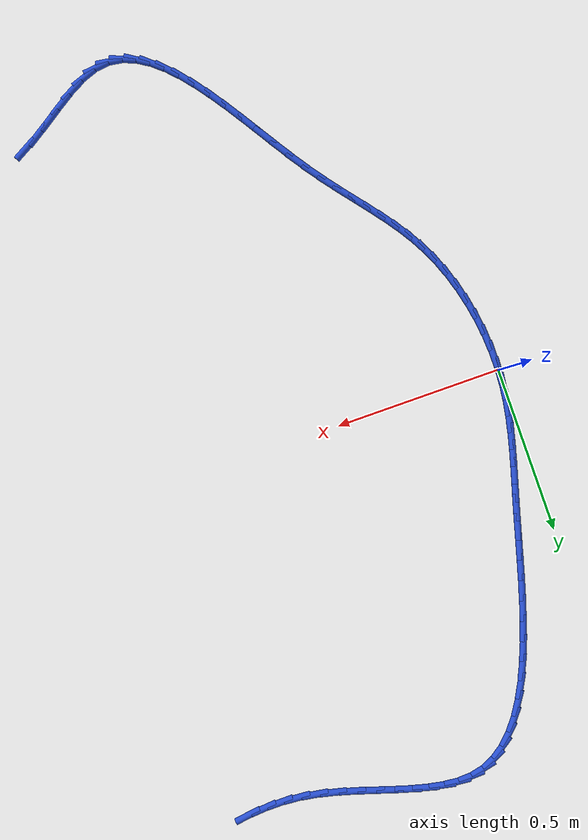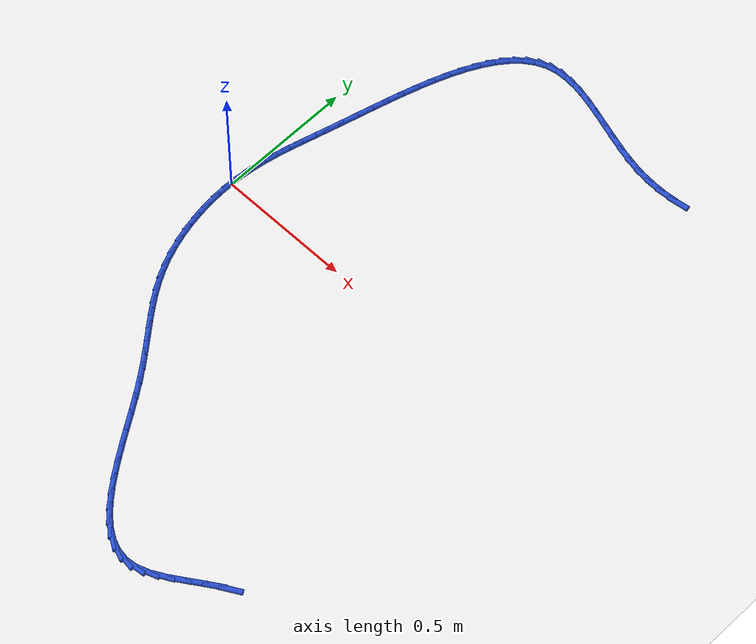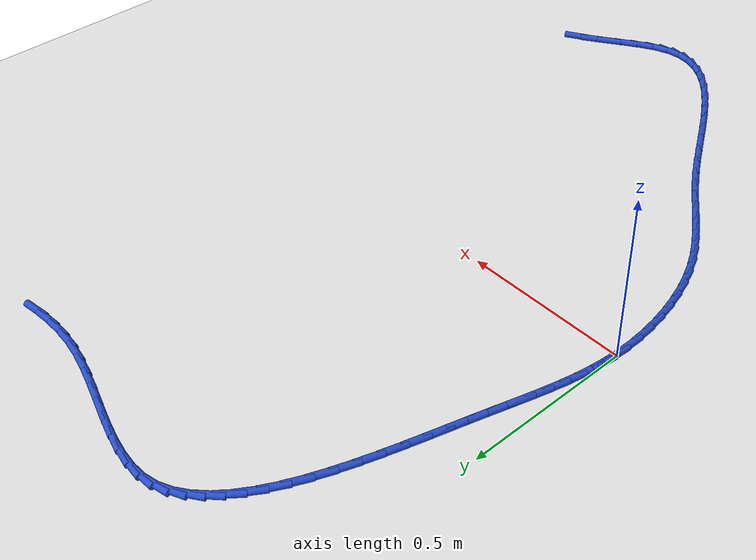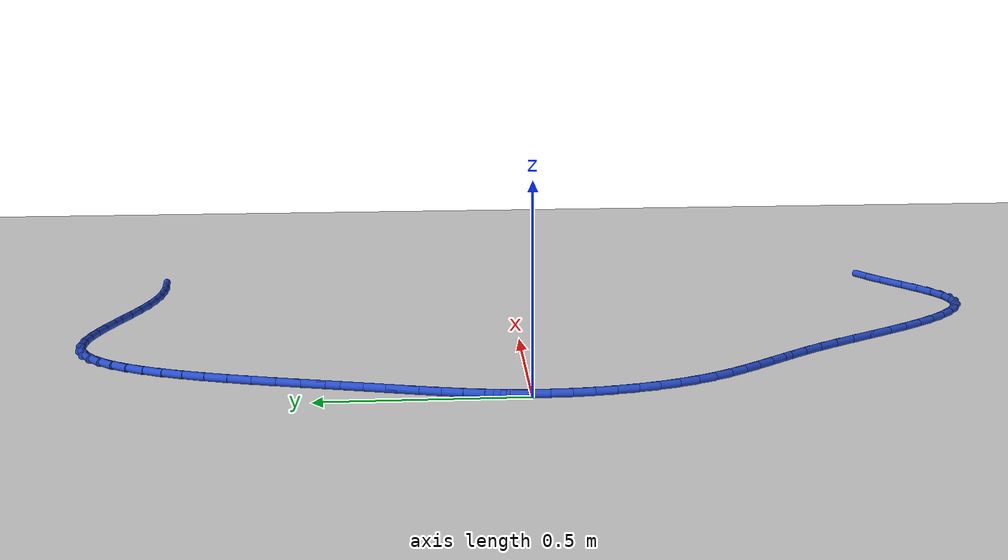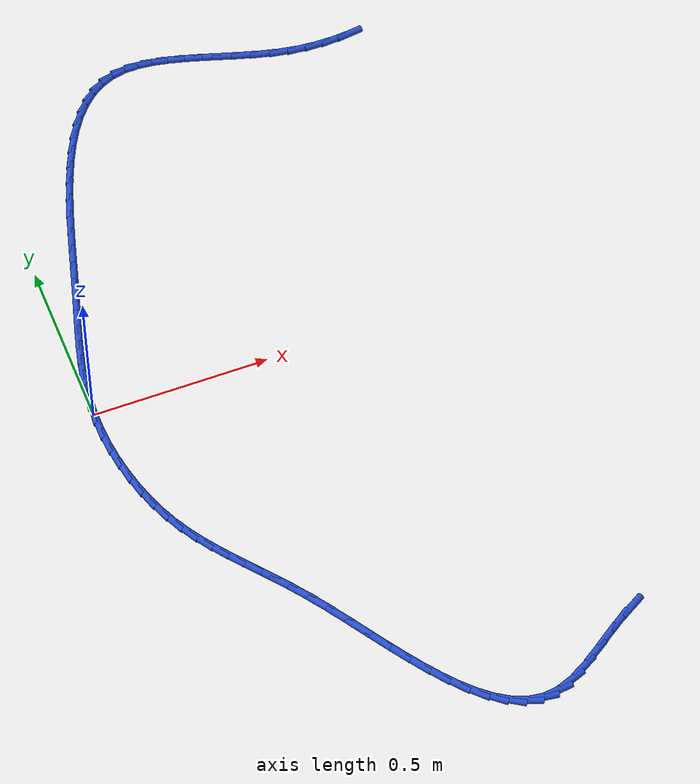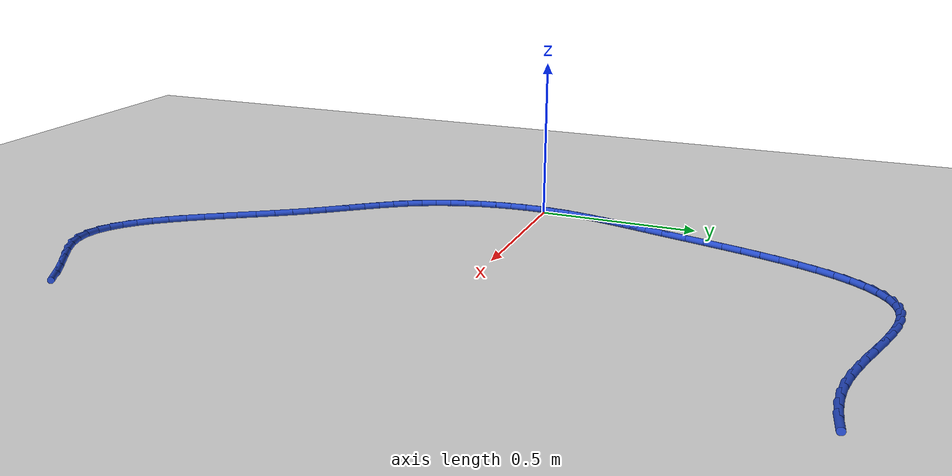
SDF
<sdf version="1.6">
 <world name="default">
  <model name="ground_plane">
   <static>1</static>
   <link name="link">
    <collision name="collision">
     <geometry><plane><normal>0 0 1</normal><size>100 100</size></plane></geometry>
     <surface><friction><ode><mu>100</mu><mu2>50</mu2></ode></friction></surface>
    </collision>
    <visual name="visual">
     <cast_shadows>0</cast_shadows>
     <geometry><plane><normal>0 0 1</normal><size>100 100</size></plane></geometry>
     <material>
      <script><uri>file://media/materials/scripts/gazebo.material</uri><name>Gazebo/WhiteGlow</name></script>
     </material>
    </visual>
   </link>
  </model>
  <model name="line">
   <link name="link_0">
    <pose>3.122502256758253e-17 -4.163336342344337e-17 0.01 0 1.57 1.5024349348868296</pose>
    <collision name="collision">
     <geometry><cylinder><radius>0.01</radius><length>0.08</length></cylinder></geometry>
    </collision>
    <visual name="visual">
     <material>
      <script><name>Gazebo/Blue</name><uri>file://media/materials/scripts/gazebo.material</uri></script>
     </material>
     <geometry><cylinder><radius>0.01</radius><length>0.08</length></cylinder></geometry>
    </visual>
   </link>
   <link name="link_1">
    <pose>0.0034064838489011695 0.049752873892944895 0.01 0 1.57 1.444446069055366</pose>
    <collision name="collision">
     <geometry><cylinder><radius>0.01</radius><length>0.08</length></cylinder></geometry>
    </collision>
    <visual name="visual">
     <material>
      <script><name>Gazebo/Blue</name><uri>file://media/materials/scripts/gazebo.material</uri></script>
     </material>
     <geometry><cylinder><radius>0.01</radius><length>0.08</length></cylinder></geometry>
    </visual>
   </link>
   <link name="link_2">
    <pose>0.009621208689857526 0.0986773341577474 0.01 0 1.57 1.3946409832740725</pose>
    <collision name="collision">
     <geometry><cylinder><radius>0.01</radius><length>0.08</length></cylinder></geometry>
    </collision>
    <visual name="visual">
     <material>
      <script><name>Gazebo/Blue</name><uri>file://media/materials/scripts/gazebo.material</uri></script>
     </material>
     <geometry><cylinder><radius>0.01</radius><length>0.08</length></cylinder></geometry>
    </visual>
   </link>
   <link name="link_3">
    <pose>0.018259850518929966 0.14720894199530554 0.01 0 1.57 1.3544053752930096</pose>
    <collision name="collision">
     <geometry><cylinder><radius>0.01</radius><length>0.08</length></cylinder></geometry>
    </collision>
    <visual name="visual">
     <material>
      <script><name>Gazebo/Blue</name><uri>file://media/materials/scripts/gazebo.material</uri></script>
     </material>
     <geometry><cylinder><radius>0.01</radius><length>0.08</length></cylinder></geometry>
    </visual>
   </link>
   <link name="link_4">
    <pose>0.028938085332179397 0.19578325860651738 0.01 0 1.57 1.3244681709011066</pose>
    <collision name="collision">
     <geometry><cylinder><radius>0.01</radius><length>0.08</length></cylinder></geometry>
    </collision>
    <visual name="visual">
     <material>
      <script><name>Gazebo/Blue</name><uri>file://media/materials/scripts/gazebo.material</uri></script>
     </material>
     <geometry><cylinder><radius>0.01</radius><length>0.08</length></cylinder></geometry>
    </visual>
   </link>
   <link name="link_5">
    <pose>0.041271589125666676 0.2448358451922809 0.01 0 1.57 1.3049682244123708</pose>
    <collision name="collision">
     <geometry><cylinder><radius>0.01</radius><length>0.08</length></cylinder></geometry>
    </collision>
    <visual name="visual">
     <material>
      <script><name>Gazebo/Blue</name><uri>file://media/materials/scripts/gazebo.material</uri></script>
     </material>
     <geometry><cylinder><radius>0.01</radius><length>0.08</length></cylinder></geometry>
    </visual>
   </link>
   <link name="link_6">
    <pose>0.054876037895452756 0.29480226295349454 0.01 0 1.57 1.2955727894526858</pose>
    <collision name="collision">
     <geometry><cylinder><radius>0.01</radius><length>0.08</length></cylinder></geometry>
    </collision>
    <visual name="visual">
     <material>
      <script><name>Gazebo/Blue</name><uri>file://media/materials/scripts/gazebo.material</uri></script>
     </material>
     <geometry><cylinder><radius>0.01</radius><length>0.08</length></cylinder></geometry>
    </visual>
   </link>
   <link name="link_7">
    <pose>0.06936710763759844 0.3461180730910558 0.01 0 1.57 1.2956034167263761</pose>
    <collision name="collision">
     <geometry><cylinder><radius>0.01</radius><length>0.08</length></cylinder></geometry>
    </collision>
    <visual name="visual">
     <material>
      <script><name>Gazebo/Blue</name><uri>file://media/materials/scripts/gazebo.material</uri></script>
     </material>
     <geometry><cylinder><radius>0.01</radius><length>0.08</length></cylinder></geometry>
    </visual>
   </link>
   <link name="link_8">
    <pose>0.08436047434816471 0.3992188368058633 0.01 0 1.57 1.3025343453050016</pose>
    <collision name="collision">
     <geometry><cylinder><radius>0.01</radius><length>0.08</length></cylinder></geometry>
    </collision>
    <visual name="visual">
     <material>
      <script><name>Gazebo/Blue</name><uri>file://media/materials/scripts/gazebo.material</uri></script>
     </material>
     <geometry><cylinder><radius>0.01</radius><length>0.08</length></cylinder></geometry>
    </visual>
   </link>
   <link name="link_9">
    <pose>0.09953490346010475 0.45442108319089597 0.01 0 1.57 1.3061589064330774</pose>
    <collision name="collision">
     <geometry><cylinder><radius>0.01</radius><length>0.08</length></cylinder></geometry>
    </collision>
    <visual name="visual">
     <material>
      <script><name>Gazebo/Blue</name><uri>file://media/materials/scripts/gazebo.material</uri></script>
     </material>
     <geometry><cylinder><radius>0.01</radius><length>0.08</length></cylinder></geometry>
    </visual>
   </link>
   <link name="link_10">
    <pose>0.11495323499113344 0.5113167001048133 0.01 0 1.57 1.3033156665192283</pose>
    <collision name="collision">
     <geometry><cylinder><radius>0.01</radius><length>0.08</length></cylinder></geometry>
    </collision>
    <visual name="visual">
     <material>
      <script><name>Gazebo/Blue</name><uri>file://media/materials/scripts/gazebo.material</uri></script>
     </material>
     <geometry><cylinder><radius>0.01</radius><length>0.08</length></cylinder></geometry>
    </visual>
   </link>
   <link name="link_11">
    <pose>0.13082284048837703 0.5692248848664 0.01 0 1.57 1.294264903463488</pose>
    <collision name="collision">
     <geometry><cylinder><radius>0.01</radius><length>0.08</length></cylinder></geometry>
    </collision>
    <visual name="visual">
     <material>
      <script><name>Gazebo/Blue</name><uri>file://media/materials/scripts/gazebo.material</uri></script>
     </material>
     <geometry><cylinder><radius>0.01</radius><length>0.08</length></cylinder></geometry>
    </visual>
   </link>
   <link name="link_12">
    <pose>0.14735135341848737 0.6274643406256109 0.01 0 1.57 1.2788922850609503</pose>
    <collision name="collision">
     <geometry><cylinder><radius>0.01</radius><length>0.08</length></cylinder></geometry>
    </collision>
    <visual name="visual">
     <material>
      <script><name>Gazebo/Blue</name><uri>file://media/materials/scripts/gazebo.material</uri></script>
     </material>
     <geometry><cylinder><radius>0.01</radius><length>0.08</length></cylinder></geometry>
    </visual>
   </link>
   <link name="link_13">
    <pose>0.16474640724811632 0.6853537705324002 0.01 0 1.57 1.2567180476974975</pose>
    <collision name="collision">
     <geometry><cylinder><radius>0.01</radius><length>0.08</length></cylinder></geometry>
    </collision>
    <visual name="visual">
     <material>
      <script><name>Gazebo/Blue</name><uri>file://media/materials/scripts/gazebo.material</uri></script>
     </material>
     <geometry><cylinder><radius>0.01</radius><length>0.08</length></cylinder></geometry>
    </visual>
   </link>
   <link name="link_14">
    <pose>0.18321563544391575 0.7422118777367221 0.01 0 1.57 1.2268685357178266</pose>
    <collision name="collision">
     <geometry><cylinder><radius>0.01</radius><length>0.08</length></cylinder></geometry>
    </collision>
    <visual name="visual">
     <material>
      <script><name>Gazebo/Blue</name><uri>file://media/materials/scripts/gazebo.material</uri></script>
     </material>
     <geometry><cylinder><radius>0.01</radius><length>0.08</length></cylinder></geometry>
    </visual>
   </link>
   <link name="link_15">
    <pose>0.2029666714725374 0.7973573653885311 0.01 0 1.57 1.1880066240494118</pose>
    <collision name="collision">
     <geometry><cylinder><radius>0.01</radius><length>0.08</length></cylinder></geometry>
    </collision>
    <visual name="visual">
     <material>
      <script><name>Gazebo/Blue</name><uri>file://media/materials/scripts/gazebo.material</uri></script>
     </material>
     <geometry><cylinder><radius>0.01</radius><length>0.08</length></cylinder></geometry>
    </visual>
   </link>
   <link name="link_16">
    <pose>0.22420714880063325 0.8501089366377819 0.01 0 1.57 1.1382225743775571</pose>
    <collision name="collision">
     <geometry><cylinder><radius>0.01</radius><length>0.08</length></cylinder></geometry>
    </collision>
    <visual name="visual">
     <material>
      <script><name>Gazebo/Blue</name><uri>file://media/materials/scripts/gazebo.material</uri></script>
     </material>
     <geometry><cylinder><radius>0.01</radius><length>0.08</length></cylinder></geometry>
    </visual>
   </link>
   <link name="link_17">
    <pose>0.2471447008948551 0.8997852946344284 0.01 0 1.57 1.0748955111268819</pose>
    <collision name="collision">
     <geometry><cylinder><radius>0.01</radius><length>0.08</length></cylinder></geometry>
    </collision>
    <visual name="visual">
     <material>
      <script><name>Gazebo/Blue</name><uri>file://media/materials/scripts/gazebo.material</uri></script>
     </material>
     <geometry><cylinder><radius>0.01</radius><length>0.08</length></cylinder></geometry>
    </visual>
   </link>
   <link name="link_18">
    <pose>0.27198696122185484 0.9457051425284254 0.01 0 1.57 0.9945689741852937</pose>
    <collision name="collision">
     <geometry><cylinder><radius>0.01</radius><length>0.08</length></cylinder></geometry>
    </collision>
    <visual name="visual">
     <material>
      <script><name>Gazebo/Blue</name><uri>file://media/materials/scripts/gazebo.material</uri></script>
     </material>
     <geometry><cylinder><radius>0.01</radius><length>0.08</length></cylinder></geometry>
    </visual>
   </link>
   <link name="link_19">
    <pose>0.29894156324828436 0.9871871834697274 0.01 0 1.57 0.8929737704911271</pose>
    <collision name="collision">
     <geometry><cylinder><radius>0.01</radius><length>0.08</length></cylinder></geometry>
    </collision>
    <visual name="visual">
     <material>
      <script><name>Gazebo/Blue</name><uri>file://media/materials/scripts/gazebo.material</uri></script>
     </material>
     <geometry><cylinder><radius>0.01</radius><length>0.08</length></cylinder></geometry>
    </visual>
   </link>
   <link name="link_20">
    <pose>0.3282161404407952 1.0235501206082882 0.01 0 1.57 0.7655233677494663</pose>
    <collision name="collision">
     <geometry><cylinder><radius>0.01</radius><length>0.08</length></cylinder></geometry>
    </collision>
    <visual name="visual">
     <material>
      <script><name>Gazebo/Blue</name><uri>file://media/materials/scripts/gazebo.material</uri></script>
     </material>
     <geometry><cylinder><radius>0.01</radius><length>0.08</length></cylinder></geometry>
    </visual>
   </link>
   <link name="link_21">
    <pose>0.3600183262660398 1.0541126570940633 0.01 0 1.57 0.6088704865778769</pose>
    <collision name="collision">
     <geometry><cylinder><radius>0.01</radius><length>0.08</length></cylinder></geometry>
    </collision>
    <visual name="visual">
     <material>
      <script><name>Gazebo/Blue</name><uri>file://media/materials/scripts/gazebo.material</uri></script>
     </material>
     <geometry><cylinder><radius>0.01</radius><length>0.08</length></cylinder></geometry>
    </visual>
   </link>
   <link name="link_22">
    <pose>0.39455575419066935 1.0781934960770059 0.01 0 1.57 0.42400061528859134</pose>
    <collision name="collision">
     <geometry><cylinder><radius>0.01</radius><length>0.08</length></cylinder></geometry>
    </collision>
    <visual name="visual">
     <material>
      <script><name>Gazebo/Blue</name><uri>file://media/materials/scripts/gazebo.material</uri></script>
     </material>
     <geometry><cylinder><radius>0.01</radius><length>0.08</length></cylinder></geometry>
    </visual>
   </link>
   <link name="link_23">
    <pose>0.4320360576813361 1.0951113407070712 0.01 0 1.57 0.22089250144606867</pose>
    <collision name="collision">
     <geometry><cylinder><radius>0.01</radius><length>0.08</length></cylinder></geometry>
    </collision>
    <visual name="visual">
     <material>
      <script><name>Gazebo/Blue</name><uri>file://media/materials/scripts/gazebo.material</uri></script>
     </material>
     <geometry><cylinder><radius>0.01</radius><length>0.08</length></cylinder></geometry>
    </visual>
   </link>
   <link name="link_24">
    <pose>0.47265217463178716 1.104231963536984 0.01 0 1.57 0.03800374693829767</pose>
    <collision name="collision">
     <geometry><cylinder><radius>0.01</radius><length>0.08</length></cylinder></geometry>
    </collision>
    <visual name="visual">
     <material>
      <script><name>Gazebo/Blue</name><uri>file://media/materials/scripts/gazebo.material</uri></script>
     </material>
     <geometry><cylinder><radius>0.01</radius><length>0.08</length></cylinder></geometry>
    </visual>
   </link>
   <link name="link_25">
    <pose>0.5162941411966497 1.1058913207285803 0.01 0 1.57 -0.09810788513666562</pose>
    <collision name="collision">
     <geometry><cylinder><radius>0.01</radius><length>0.08</length></cylinder></geometry>
    </collision>
    <visual name="visual">
     <material>
      <script><name>Gazebo/Blue</name><uri>file://media/materials/scripts/gazebo.material</uri></script>
     </material>
     <geometry><cylinder><radius>0.01</radius><length>0.08</length></cylinder></geometry>
    </visual>
   </link>
   <link name="link_26">
    <pose>0.5625673948369634 1.1013369280421808 0.01 0 1.57 -0.193139433856809</pose>
    <collision name="collision">
     <geometry><cylinder><radius>0.01</radius><length>0.08</length></cylinder></geometry>
    </collision>
    <visual name="visual">
     <material>
      <script><name>Gazebo/Blue</name><uri>file://media/materials/scripts/gazebo.material</uri></script>
     </material>
     <geometry><cylinder><radius>0.01</radius><length>0.08</length></cylinder></geometry>
    </visual>
   </link>
   <link name="link_27">
    <pose>0.611066342508502 1.091851631558232 0.01 0 1.57 -0.2553060456188679</pose>
    <collision name="collision">
     <geometry><cylinder><radius>0.01</radius><length>0.08</length></cylinder></geometry>
    </collision>
    <visual name="visual">
     <material>
      <script><name>Gazebo/Blue</name><uri>file://media/materials/scripts/gazebo.material</uri></script>
     </material>
     <geometry><cylinder><radius>0.01</radius><length>0.08</length></cylinder></geometry>
    </visual>
   </link>
   <link name="link_28">
    <pose>0.6613853911670386 1.0787182773571802 0.01 0 1.57 -0.2910754544736426</pose>
    <collision name="collision">
     <geometry><cylinder><radius>0.01</radius><length>0.08</length></cylinder></geometry>
    </collision>
    <visual name="visual">
     <material>
      <script><name>Gazebo/Blue</name><uri>file://media/materials/scripts/gazebo.material</uri></script>
     </material>
     <geometry><cylinder><radius>0.01</radius><length>0.08</length></cylinder></geometry>
    </visual>
   </link>
   <link name="link_29">
    <pose>0.7131189477683475 1.0632197115194713 0.01 0 1.57 -0.3045924322972704</pose>
    <collision name="collision">
     <geometry><cylinder><radius>0.01</radius><length>0.08</length></cylinder></geometry>
    </collision>
    <visual name="visual">
     <material>
      <script><name>Gazebo/Blue</name><uri>file://media/materials/scripts/gazebo.material</uri></script>
     </material>
     <geometry><cylinder><radius>0.01</radius><length>0.08</length></cylinder></geometry>
    </visual>
   </link>
   <link name="link_30">
    <pose>0.7658614192682015 1.0466387801255517 0.01 0 1.57 -0.2979227758545524</pose>
    <collision name="collision">
     <geometry><cylinder><radius>0.01</radius><length>0.08</length></cylinder></geometry>
    </collision>
    <visual name="visual">
     <material>
      <script><name>Gazebo/Blue</name><uri>file://media/materials/scripts/gazebo.material</uri></script>
     </material>
     <geometry><cylinder><radius>0.01</radius><length>0.08</length></cylinder></geometry>
    </visual>
   </link>
   <link name="link_31">
    <pose>0.8192072126223747 1.0302583292558676 0.01 0 1.57 -0.2713616040444545</pose>
    <collision name="collision">
     <geometry><cylinder><radius>0.01</radius><length>0.08</length></cylinder></geometry>
    </collision>
    <visual name="visual">
     <material>
      <script><name>Gazebo/Blue</name><uri>file://media/materials/scripts/gazebo.material</uri></script>
     </material>
     <geometry><cylinder><radius>0.01</radius><length>0.08</length></cylinder></geometry>
    </visual>
   </link>
   <link name="link_32">
    <pose>0.8727507347866399 1.0153612049908654 0.01 0 1.57 -0.22364081399501537</pose>
    <collision name="collision">
     <geometry><cylinder><radius>0.01</radius><length>0.08</length></cylinder></geometry>
    </collision>
    <visual name="visual">
     <material>
      <script><name>Gazebo/Blue</name><uri>file://media/materials/scripts/gazebo.material</uri></script>
     </material>
     <geometry><cylinder><radius>0.01</radius><length>0.08</length></cylinder></geometry>
    </visual>
   </link>
   <link name="link_33">
    <pose>0.9260863927167708 1.0032302534109907 0.01 0 1.57 -0.15231245798812665</pose>
    <collision name="collision">
     <geometry><cylinder><radius>0.01</radius><length>0.08</length></cylinder></geometry>
    </collision>
    <visual name="visual">
     <material>
      <script><name>Gazebo/Blue</name><uri>file://media/materials/scripts/gazebo.material</uri></script>
     </material>
     <geometry><cylinder><radius>0.01</radius><length>0.08</length></cylinder></geometry>
    </visual>
   </link>
   <link name="link_34">
    <pose>0.9788118989345896 0.9951368181853478 0.01 0 1.57 -0.06693519968694818</pose>
    <collision name="collision">
     <geometry><cylinder><radius>0.01</radius><length>0.08</length></cylinder></geometry>
    </collision>
    <visual name="visual">
     <material>
      <script><name>Gazebo/Blue</name><uri>file://media/materials/scripts/gazebo.material</uri></script>
     </material>
     <geometry><cylinder><radius>0.01</radius><length>0.08</length></cylinder></geometry>
    </visual>
   </link>
   <link name="link_35">
    <pose>1.0307248174096666 0.9916568178951465 0.01 0 1.57 0.01227071794901337</pose>
    <collision name="collision">
     <geometry><cylinder><radius>0.01</radius><length>0.08</length></cylinder></geometry>
    </collision>
    <visual name="visual">
     <material>
      <script><name>Gazebo/Blue</name><uri>file://media/materials/scripts/gazebo.material</uri></script>
     </material>
     <geometry><cylinder><radius>0.01</radius><length>0.08</length></cylinder></geometry>
    </visual>
   </link>
   <link name="link_36">
    <pose>1.081933357574416 0.9922852149877642 0.01 0 1.57 0.08154232920392279</pose>
    <collision name="collision">
     <geometry><cylinder><radius>0.01</radius><length>0.08</length></cylinder></geometry>
    </collision>
    <visual name="visual">
     <material>
      <script><name>Gazebo/Blue</name><uri>file://media/materials/scripts/gazebo.material</uri></script>
     </material>
     <geometry><cylinder><radius>0.01</radius><length>0.08</length></cylinder></geometry>
    </visual>
   </link>
   <link name="link_37">
    <pose>1.1325725536657614 0.9964236293691815 0.01 0 1.57 0.13951334153947184</pose>
    <collision name="collision">
     <geometry><cylinder><radius>0.01</radius><length>0.08</length></cylinder></geometry>
    </collision>
    <visual name="visual">
     <material>
      <script><name>Gazebo/Blue</name><uri>file://media/materials/scripts/gazebo.material</uri></script>
     </material>
     <geometry><cylinder><radius>0.01</radius><length>0.08</length></cylinder></geometry>
    </visual>
   </link>
   <link name="link_114">
    <pose>1.1010838221725354 -1.077623619153649 0.01 0 1.57 0.5161872531282622</pose>
    <collision name="collision">
     <geometry><cylinder><radius>0.01</radius><length>0.08</length></cylinder></geometry>
    </collision>
    <visual name="visual">
     <material>
      <script><name>Gazebo/Blue</name><uri>file://media/materials/scripts/gazebo.material</uri></script>
     </material>
     <geometry><cylinder><radius>0.01</radius><length>0.08</length></cylinder></geometry>
    </visual>
   </link>
   <link name="link_115">
    <pose>1.0532956260511088 -1.104743906233756 0.01 0 1.57 0.5747021491986989</pose>
    <collision name="collision">
     <geometry><cylinder><radius>0.01</radius><length>0.08</length></cylinder></geometry>
    </collision>
    <visual name="visual">
     <material>
      <script><name>Gazebo/Blue</name><uri>file://media/materials/scripts/gazebo.material</uri></script>
     </material>
     <geometry><cylinder><radius>0.01</radius><length>0.08</length></cylinder></geometry>
    </visual>
   </link>
   <link name="link_116">
    <pose>1.0059403100796789 -1.1354122809384655 0.01 0 1.57 0.5899131357536173</pose>
    <collision name="collision">
     <geometry><cylinder><radius>0.01</radius><length>0.08</length></cylinder></geometry>
    </collision>
    <visual name="visual">
     <material>
      <script><name>Gazebo/Blue</name><uri>file://media/materials/scripts/gazebo.material</uri></script>
     </material>
     <geometry><cylinder><radius>0.01</radius><length>0.08</length></cylinder></geometry>
    </visual>
   </link>
   <link name="link_117">
    <pose>0.9592344301671333 -1.166678590986513 0.01 0 1.57 0.5627325761224312</pose>
    <collision name="collision">
     <geometry><cylinder><radius>0.01</radius><length>0.08</length></cylinder></geometry>
    </collision>
    <visual name="visual">
     <material>
      <script><name>Gazebo/Blue</name><uri>file://media/materials/scripts/gazebo.material</uri></script>
     </material>
     <geometry><cylinder><radius>0.01</radius><length>0.08</length></cylinder></geometry>
    </visual>
   </link>
   <link name="link_118">
    <pose>0.9133945422223576 -1.195592684096637 0.01 0 1.57 0.48544373340819685</pose>
    <collision name="collision">
     <geometry><cylinder><radius>0.01</radius><length>0.08</length></cylinder></geometry>
    </collision>
    <visual name="visual">
     <material>
      <script><name>Gazebo/Blue</name><uri>file://media/materials/scripts/gazebo.material</uri></script>
     </material>
     <geometry><cylinder><radius>0.01</radius><length>0.08</length></cylinder></geometry>
    </visual>
   </link>
   <link name="link_119">
    <pose>0.868637202154241 -1.2192044079875741 0.01 0 1.57 0.33972227324205617</pose>
    <collision name="collision">
     <geometry><cylinder><radius>0.01</radius><length>0.08</length></cylinder></geometry>
    </collision>
    <visual name="visual">
     <material>
      <script><name>Gazebo/Blue</name><uri>file://media/materials/scripts/gazebo.material</uri></script>
     </material>
     <geometry><cylinder><radius>0.01</radius><length>0.08</length></cylinder></geometry>
    </visual>
   </link>
   <link name="link_120">
    <pose>0.8251789658716697 -1.2345636103780633 0.01 0 1.57 0.10850122701790788</pose>
    <collision name="collision">
     <geometry><cylinder><radius>0.01</radius><length>0.08</length></cylinder></geometry>
    </collision>
    <visual name="visual">
     <material>
      <script><name>Gazebo/Blue</name><uri>file://media/materials/scripts/gazebo.material</uri></script>
     </material>
     <geometry><cylinder><radius>0.01</radius><length>0.08</length></cylinder></geometry>
    </visual>
   </link>
   <link name="link_121">
    <pose>0.783201051688091 -1.2391362233936571 0.01 0 1.57 -0.14991892163651815</pose>
    <collision name="collision">
     <geometry><cylinder><radius>0.01</radius><length>0.08</length></cylinder></geometry>
    </collision>
    <visual name="visual">
     <material>
      <script><name>Gazebo/Blue</name><uri>file://media/materials/scripts/gazebo.material</uri></script>
     </material>
     <geometry><cylinder><radius>0.01</radius><length>0.08</length></cylinder></geometry>
    </visual>
   </link>
   <link name="link_122">
    <pose>0.7426617824299336 -1.2330126739887433 0.01 0 1.57 -0.3808833091295086</pose>
    <collision name="collision">
     <geometry><cylinder><radius>0.01</radius><length>0.08</length></cylinder></geometry>
    </collision>
    <visual name="visual">
     <material>
      <script><name>Gazebo/Blue</name><uri>file://media/materials/scripts/gazebo.material</uri></script>
     </material>
     <geometry><cylinder><radius>0.01</radius><length>0.08</length></cylinder></geometry>
    </visual>
   </link>
   <link name="link_123">
    <pose>0.7034328075879182 -1.2173039289429242 0.01 0 1.57 -0.5661457718430578</pose>
    <collision name="collision">
     <geometry><cylinder><radius>0.01</radius><length>0.08</length></cylinder></geometry>
    </collision>
    <visual name="visual">
     <material>
      <script><name>Gazebo/Blue</name><uri>file://media/materials/scripts/gazebo.material</uri></script>
     </material>
     <geometry><cylinder><radius>0.01</radius><length>0.08</length></cylinder></geometry>
    </visual>
   </link>
   <link name="link_124">
    <pose>0.6653855830058222 -1.1931232351420942 0.01 0 1.57 -0.7059748821904573</pose>
    <collision name="collision">
     <geometry><cylinder><radius>0.01</radius><length>0.08</length></cylinder></geometry>
    </collision>
    <visual name="visual">
     <material>
      <script><name>Gazebo/Blue</name><uri>file://media/materials/scripts/gazebo.material</uri></script>
     </material>
     <geometry><cylinder><radius>0.01</radius><length>0.08</length></cylinder></geometry>
    </visual>
   </link>
   <link name="link_125">
    <pose>0.6283915645274237 -1.161583839472149 0.01 0 1.57 -0.8086221036236838</pose>
    <collision name="collision">
     <geometry><cylinder><radius>0.01</radius><length>0.08</length></cylinder></geometry>
    </collision>
    <visual name="visual">
     <material>
      <script><name>Gazebo/Blue</name><uri>file://media/materials/scripts/gazebo.material</uri></script>
     </material>
     <geometry><cylinder><radius>0.01</radius><length>0.08</length></cylinder></geometry>
    </visual>
   </link>
   <link name="link_126">
    <pose>0.5923222079964992 -1.1237989888189828 0.01 0 1.57 -0.8828477016863684</pose>
    <collision name="collision">
     <geometry><cylinder><radius>0.01</radius><length>0.08</length></cylinder></geometry>
    </collision>
    <visual name="visual">
     <material>
      <script><name>Gazebo/Blue</name><uri>file://media/materials/scripts/gazebo.material</uri></script>
     </material>
     <geometry><cylinder><radius>0.01</radius><length>0.08</length></cylinder></geometry>
    </visual>
   </link>
   <link name="link_127">
    <pose>0.5570489692568268 -1.0808819300684915 0.01 0 1.57 -0.9354765098443545</pose>
    <collision name="collision">
     <geometry><cylinder><radius>0.01</radius><length>0.08</length></cylinder></geometry>
    </collision>
    <visual name="visual">
     <material>
      <script><name>Gazebo/Blue</name><uri>file://media/materials/scripts/gazebo.material</uri></script>
     </material>
     <geometry><cylinder><radius>0.01</radius><length>0.08</length></cylinder></geometry>
    </visual>
   </link>
   <link name="link_128">
    <pose>0.5224433041521829 -1.0339459101065689 0.01 0 1.57 -0.9712328308862009</pose>
    <collision name="collision">
     <geometry><cylinder><radius>0.01</radius><length>0.08</length></cylinder></geometry>
    </collision>
    <visual name="visual">
     <material>
      <script><name>Gazebo/Blue</name><uri>file://media/materials/scripts/gazebo.material</uri></script>
     </material>
     <geometry><cylinder><radius>0.01</radius><length>0.08</length></cylinder></geometry>
    </visual>
   </link>
   <link name="link_129">
    <pose>0.4883766685263454 -0.9841041758191104 0.01 0 1.57 -0.9931434809019176</pose>
    <collision name="collision">
     <geometry><cylinder><radius>0.01</radius><length>0.08</length></cylinder></geometry>
    </collision>
    <visual name="visual">
     <material>
      <script><name>Gazebo/Blue</name><uri>file://media/materials/scripts/gazebo.material</uri></script>
     </material>
     <geometry><cylinder><radius>0.01</radius><length>0.08</length></cylinder></geometry>
    </visual>
   </link>
   <link name="link_130">
    <pose>0.4547205182230925 -0.9324699740920125 0.01 0 1.57 -1.0029270998333335</pose>
    <collision name="collision">
     <geometry><cylinder><radius>0.01</radius><length>0.08</length></cylinder></geometry>
    </collision>
    <visual name="visual">
     <material>
      <script><name>Gazebo/Blue</name><uri>file://media/materials/scripts/gazebo.material</uri></script>
     </material>
     <geometry><cylinder><radius>0.01</radius><length>0.08</length></cylinder></geometry>
    </visual>
   </link>
   <link name="link_131">
    <pose>0.42134630908620013 -0.8801565518111676 0.01 0 1.57 -1.0012370522501437</pose>
    <collision name="collision">
     <geometry><cylinder><radius>0.01</radius><length>0.08</length></cylinder></geometry>
    </collision>
    <visual name="visual">
     <material>
      <script><name>Gazebo/Blue</name><uri>file://media/materials/scripts/gazebo.material</uri></script>
     </material>
     <geometry><cylinder><radius>0.01</radius><length>0.08</length></cylinder></geometry>
    </visual>
   </link>
   <link name="link_132">
    <pose>0.38812549695944704 -0.8282771558624729 0.01 0 1.57 -0.9877450426721589</pose>
    <collision name="collision">
     <geometry><cylinder><radius>0.01</radius><length>0.08</length></cylinder></geometry>
    </collision>
    <visual name="visual">
     <material>
      <script><name>Gazebo/Blue</name><uri>file://media/materials/scripts/gazebo.material</uri></script>
     </material>
     <geometry><cylinder><radius>0.01</radius><length>0.08</length></cylinder></geometry>
    </visual>
   </link>
   <link name="link_133">
    <pose>0.35492953768660923 -0.7779450331318217 0.01 0 1.57 -0.9611536664786303</pose>
    <collision name="collision">
     <geometry><cylinder><radius>0.01</radius><length>0.08</length></cylinder></geometry>
    </collision>
    <visual name="visual">
     <material>
      <script><name>Gazebo/Blue</name><uri>file://media/materials/scripts/gazebo.material</uri></script>
     </material>
     <geometry><cylinder><radius>0.01</radius><length>0.08</length></cylinder></geometry>
    </visual>
   </link>
   <link name="link_134">
    <pose>0.3216316577761976 -0.7302667757015249 0.01 0 1.57 -0.9279798276238712</pose>
    <collision name="collision">
     <geometry><cylinder><radius>0.01</radius><length>0.08</length></cylinder></geometry>
    </collision>
    <visual name="visual">
     <material>
      <script><name>Gazebo/Blue</name><uri>file://media/materials/scripts/gazebo.material</uri></script>
     </material>
     <geometry><cylinder><radius>0.01</radius><length>0.08</length></cylinder></geometry>
    </visual>
   </link>
   <link name="link_135">
    <pose>0.2882715895433737 -0.6857231861307543 0.01 0 1.57 -0.9042819490356734</pose>
    <collision name="collision">
     <geometry><cylinder><radius>0.01</radius><length>0.08</length></cylinder></geometry>
    </collision>
    <visual name="visual">
     <material>
      <script><name>Gazebo/Blue</name><uri>file://media/materials/scripts/gazebo.material</uri></script>
     </material>
     <geometry><cylinder><radius>0.01</radius><length>0.08</length></cylinder></geometry>
    </visual>
   </link>
   <link name="link_136">
    <pose>0.25518950019530423 -0.6436659231272654 0.01 0 1.57 -0.8936077416035204</pose>
    <collision name="collision">
     <geometry><cylinder><radius>0.01</radius><length>0.08</length></cylinder></geometry>
    </collision>
    <visual name="visual">
     <material>
      <script><name>Gazebo/Blue</name><uri>file://media/materials/scripts/gazebo.material</uri></script>
     </material>
     <geometry><cylinder><radius>0.01</radius><length>0.08</length></cylinder></geometry>
    </visual>
   </link>
   <link name="link_137">
    <pose>0.22275707470827782 -0.6033281901322707 0.01 0 1.57 -0.8975577425501666</pose>
    <collision name="collision">
     <geometry><cylinder><radius>0.01</radius><length>0.08</length></cylinder></geometry>
    </collision>
    <visual name="visual">
     <material>
      <script><name>Gazebo/Blue</name><uri>file://media/materials/scripts/gazebo.material</uri></script>
     </material>
     <geometry><cylinder><radius>0.01</radius><length>0.08</length></cylinder></geometry>
    </visual>
   </link>
   <link name="link_138">
    <pose>0.19134599805858316 -0.5639431905869821 0.01 0 1.57 -0.9172693048884452</pose>
    <collision name="collision">
     <geometry><cylinder><radius>0.01</radius><length>0.08</length></cylinder></geometry>
    </collision>
    <visual name="visual">
     <material>
      <script><name>Gazebo/Blue</name><uri>file://media/materials/scripts/gazebo.material</uri></script>
     </material>
     <geometry><cylinder><radius>0.01</radius><length>0.08</length></cylinder></geometry>
    </visual>
   </link>
   <link name="link_139">
    <pose>0.1613279552225073 -0.5247441279326096 0.01 0 1.57 -0.9532303542925248</pose>
    <collision name="collision">
     <geometry><cylinder><radius>0.01</radius><length>0.08</length></cylinder></geometry>
    </collision>
    <visual name="visual">
     <material>
      <script><name>Gazebo/Blue</name><uri>file://media/materials/scripts/gazebo.material</uri></script>
     </material>
     <geometry><cylinder><radius>0.01</radius><length>0.08</length></cylinder></geometry>
    </visual>
   </link>
   <link name="link_140">
    <pose>0.13307463117633944 -0.4849642056103665 0.01 0 1.57 -1.0050225654163278</pose>
    <collision name="collision">
     <geometry><cylinder><radius>0.01</radius><length>0.08</length></cylinder></geometry>
    </collision>
    <visual name="visual">
     <material>
      <script><name>Gazebo/Blue</name><uri>file://media/materials/scripts/gazebo.material</uri></script>
     </material>
     <geometry><cylinder><radius>0.01</radius><length>0.08</length></cylinder></geometry>
    </visual>
   </link>
   <link name="link_141">
    <pose>0.10695771089636683 -0.443836627061463 0.01 0 1.57 -1.0710447788855113</pose>
    <collision name="collision">
     <geometry><cylinder><radius>0.01</radius><length>0.08</length></cylinder></geometry>
    </collision>
    <visual name="visual">
     <material>
      <script><name>Gazebo/Blue</name><uri>file://media/materials/scripts/gazebo.material</uri></script>
     </material>
     <geometry><cylinder><radius>0.01</radius><length>0.08</length></cylinder></geometry>
    </visual>
   </link>
   <link name="link_142">
    <pose>0.08334873470540703 -0.40059515459723605 0.01 0 1.57 -1.1444379126978157</pose>
    <collision name="collision">
     <geometry><cylinder><radius>0.01</radius><length>0.08</length></cylinder></geometry>
    </collision>
    <visual name="visual">
     <material>
      <script><name>Gazebo/Blue</name><uri>file://media/materials/scripts/gazebo.material</uri></script>
     </material>
     <geometry><cylinder><radius>0.01</radius><length>0.08</length></cylinder></geometry>
    </visual>
   </link>
   <link name="link_143">
    <pose>0.06253942074680262 -0.3547819443143216 0.01 0 1.57 -1.2134627482723073</pose>
    <collision name="collision">
     <geometry><cylinder><radius>0.01</radius><length>0.08</length></cylinder></geometry>
    </collision>
    <visual name="visual">
     <material>
      <script><name>Gazebo/Blue</name><uri>file://media/materials/scripts/gazebo.material</uri></script>
     </material>
     <geometry><cylinder><radius>0.01</radius><length>0.08</length></cylinder></geometry>
    </visual>
   </link>
   <link name="link_144">
    <pose>0.04460936963797166 -0.30675867048309413 0.01 0 1.57 -1.277773922484054</pose>
    <collision name="collision">
     <geometry><cylinder><radius>0.01</radius><length>0.08</length></cylinder></geometry>
    </collision>
    <visual name="visual">
     <material>
      <script><name>Gazebo/Blue</name><uri>file://media/materials/scripts/gazebo.material</uri></script>
     </material>
     <geometry><cylinder><radius>0.01</radius><length>0.08</length></cylinder></geometry>
    </visual>
   </link>
   <link name="link_145">
    <pose>0.029603338828374803 -0.2570216243003203 0.01 0 1.57 -1.3388141308518897</pose>
    <collision name="collision">
     <geometry><cylinder><radius>0.01</radius><length>0.08</length></cylinder></geometry>
    </collision>
    <visual name="visual">
     <material>
      <script><name>Gazebo/Blue</name><uri>file://media/materials/scripts/gazebo.material</uri></script>
     </material>
     <geometry><cylinder><radius>0.01</radius><length>0.08</length></cylinder></geometry>
    </visual>
   </link>
   <link name="link_146">
    <pose>0.01756608576747163 -0.20606709696276287 0.01 0 1.57 -1.397917437387768</pose>
    <collision name="collision">
     <geometry><cylinder><radius>0.01</radius><length>0.08</length></cylinder></geometry>
    </collision>
    <visual name="visual">
     <material>
      <script><name>Gazebo/Blue</name><uri>file://media/materials/scripts/gazebo.material</uri></script>
     </material>
     <geometry><cylinder><radius>0.01</radius><length>0.08</length></cylinder></geometry>
    </visual>
   </link>
   <link name="link_147">
    <pose>0.008542367904722497 -0.15439137966718727 0.01 0 1.57 -1.4563591180990925</pose>
    <collision name="collision">
     <geometry><cylinder><radius>0.01</radius><length>0.08</length></cylinder></geometry>
    </collision>
    <visual name="visual">
     <material>
      <script><name>Gazebo/Blue</name><uri>file://media/materials/scripts/gazebo.material</uri></script>
     </material>
     <geometry><cylinder><radius>0.01</radius><length>0.08</length></cylinder></geometry>
    </visual>
   </link>
   <link name="link_148">
    <pose>0.002576942689587548 -0.10249076361035908 0.01 0 1.57 -1.5154120382630165</pose>
    <collision name="collision">
     <geometry><cylinder><radius>0.01</radius><length>0.08</length></cylinder></geometry>
    </collision>
    <visual name="visual">
     <material>
      <script><name>Gazebo/Blue</name><uri>file://media/materials/scripts/gazebo.material</uri></script>
     </material>
     <geometry><cylinder><radius>0.01</radius><length>0.08</length></cylinder></geometry>
    </visual>
   </link>
   <link name="link_149">
    <pose>-0.0002854324284733197 -0.05086153998904129 0.01 0 1.57 1.5651844355284643</pose>
    <collision name="collision">
     <geometry><cylinder><radius>0.01</radius><length>0.08</length></cylinder></geometry>
    </collision>
    <visual name="visual">
     <material>
      <script><name>Gazebo/Blue</name><uri>file://media/materials/scripts/gazebo.material</uri></script>
     </material>
     <geometry><cylinder><radius>0.01</radius><length>0.08</length></cylinder></geometry>
    </visual>
   </link>
   <link name="link_150">
    <pose>4.163336342344337e-17 -1.8041124150158794e-16 0.01 0 1.57 1.5007865744300344</pose>
    <collision name="collision">
     <geometry><cylinder><radius>0.01</radius><length>0.08</length></cylinder></geometry>
    </collision>
    <visual name="visual">
     <material>
      <script><name>Gazebo/Blue</name><uri>file://media/materials/scripts/gazebo.material</uri></script>
     </material>
     <geometry><cylinder><radius>0.01</radius><length>0.08</length></cylinder></geometry>
    </visual>
   </link>
   <link name="link_151">
    <pose>0.003477997424467829 0.04959756516000208 0.01 0 1.57 1.500786574430034</pose>
    <collision name="collision">
     <geometry><cylinder><radius>0.01</radius><length>0.08</length></cylinder></geometry>
    </collision>
    <visual name="visual">
     <material>
      <script><name>Gazebo/Blue</name><uri>file://media/materials/scripts/gazebo.material</uri></script>
     </material>
     <geometry><cylinder><radius>0.01</radius><length>0.08</length></cylinder></geometry>
    </visual>
   </link>
  </model>
 </world>
</sdf>
